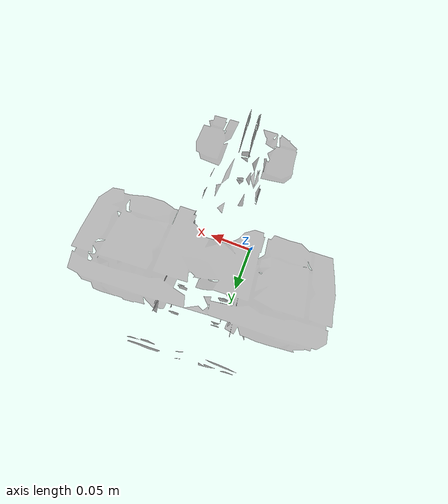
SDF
<?xml version="1.0" ?>
<sdf version="1.4">
  <model name='ycb_072-a_toy_airplane'>
    <link name='body'>
      <inertial>
        <mass>0.57</mass>
        <pose>0.0357247570654 0.0308073991106 0.0909231453241 0 0 0</pose>
        <inertia>
          <ixx>0.00288949931189</ixx>
          <ixy>5.63447600471e-05</ixy>
          <ixz>7.58527217051e-06</ixz>
          <iyy>0.00199606733571</iyy>
          <iyz>-0.000227239059522</iyz>
          <izz>0.0034033262607</izz>
        </inertia>
      </inertial>
      <visual name='ycb_072-a_toy_airplane_visual'>
        <pose>0 0 0 0 0 0</pose>
        <geometry>
          <mesh>
            <uri>model://ycb_072-a_toy_airplane/meshes/textured.dae</uri>
          </mesh>
        </geometry>
      </visual>
      <collision name='ycb_072-a_toy_airplane_collision'>
        <pose>0 0 0 0 0 0</pose>
        <geometry>
          <mesh>
            <uri>model://ycb_072-a_toy_airplane/meshes/nontextured.stl</uri>
          </mesh>
        </geometry>
        <max_contacts>10</max_contacts>
      </collision>
    </link>
  </model>
</sdf>
